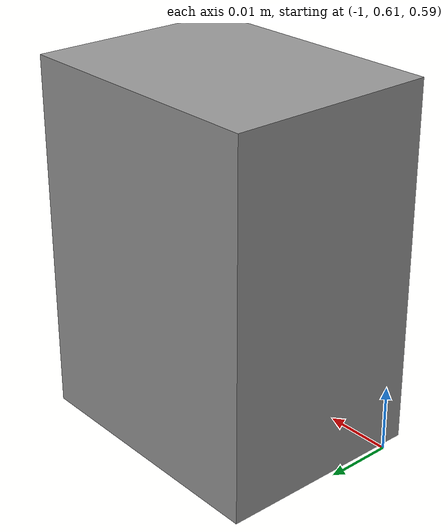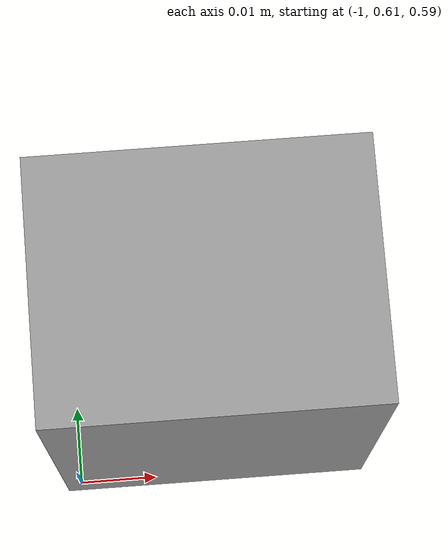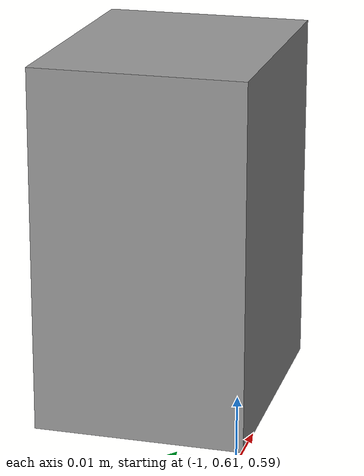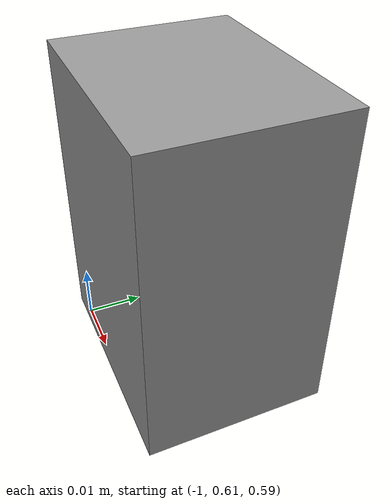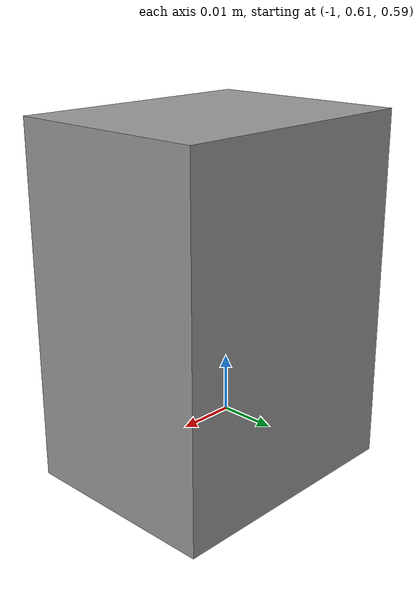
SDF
<?xml version='1.0'?>
<sdf version='1.6'>
  <model name='table'>
    <link name='link'>
      <inertial>
        <mass>4.77202e-13</mass>
        <inertia>
          <ixx>1.46433e-16</ixx>
          <ixy>0</ixy>
          <ixz>0</ixz>
          <iyy>1.69911e-16</iyy>
          <iyz>0</iyz>
          <izz>9.67909e-17</izz>
        </inertia>
        <pose frame=''>0 0 0 0 -0 0</pose>
      </inertial>
      <self_collide>0</self_collide>
      <enable_wind>0</enable_wind>
      <kinematic>0</kinematic>
      <pose frame=''>-0.982131 0.623897 0.61875 0 -0 0</pose>
      <visual name='visual'>
        <geometry>
          <box>
            <size>0.038887 0.030361 0.052541</size>
          </box>
        </geometry>
        <material>
          <script>
            <name>Gazebo/Grey</name>
            <uri>file://media/materials/scripts/gazebo.material</uri>
          </script>
        </material>
        <pose frame=''>0 0 0 0 -0 0</pose>
        <transparency>0</transparency>
        <cast_shadows>1</cast_shadows>
      </visual>
      <collision name='collision'>
        <laser_retro>0</laser_retro>
        <max_contacts>10</max_contacts>
        <pose frame=''>0 0 0 0 -0 0</pose>
        <geometry>
          <box>
            <size>0.038887 0.030361 0.052541</size>
          </box>
        </geometry>
        <surface>
          <friction>
            <ode>
              <mu>1</mu>
              <mu2>1</mu2>
              <fdir1>0 0 0</fdir1>
              <slip1>0</slip1>
              <slip2>0</slip2>
            </ode>
            <torsional>
              <coefficient>1</coefficient>
              <patch_radius>0</patch_radius>
              <surface_radius>0</surface_radius>
              <use_patch_radius>1</use_patch_radius>
              <ode>
                <slip>0</slip>
              </ode>
            </torsional>
          </friction>
          <bounce>
            <restitution_coefficient>0</restitution_coefficient>
            <threshold>1e+06</threshold>
          </bounce>
          <contact>
            <collide_without_contact>0</collide_without_contact>
            <collide_without_contact_bitmask>1</collide_without_contact_bitmask>
            <collide_bitmask>1</collide_bitmask>
            <ode>
              <soft_cfm>0</soft_cfm>
              <soft_erp>0.2</soft_erp>
              <kp>1e+13</kp>
              <kd>1</kd>
              <max_vel>0.01</max_vel>
              <min_depth>0</min_depth>
            </ode>
            <bullet>
              <split_impulse>1</split_impulse>
              <split_impulse_penetration_threshold>-0.01</split_impulse_penetration_threshold>
              <soft_cfm>0</soft_cfm>
              <soft_erp>0.2</soft_erp>
              <kp>1e+13</kp>
              <kd>1</kd>
            </bullet>
          </contact>
        </surface>
      </collision>
    </link>
    <static>0</static>
    <allow_auto_disable>1</allow_auto_disable>
  </model>
</sdf>
